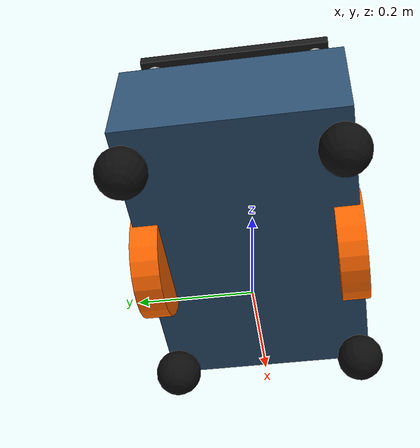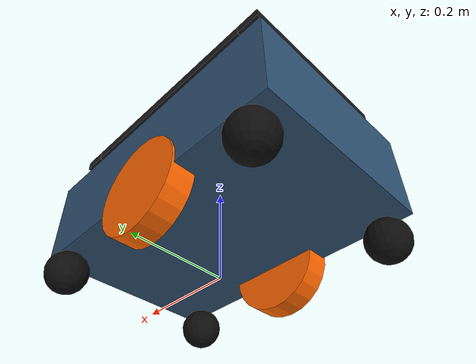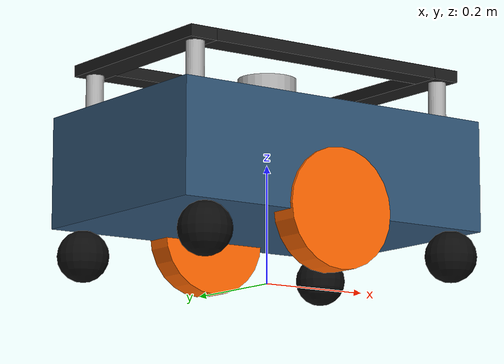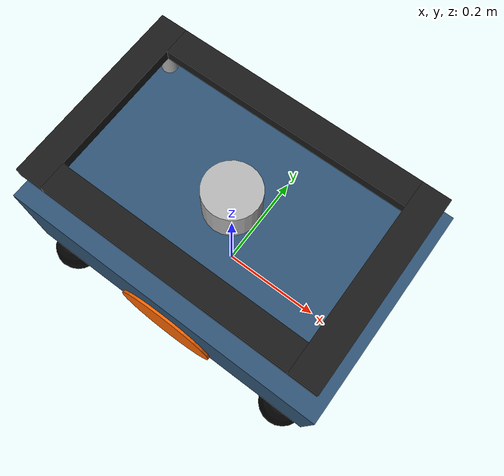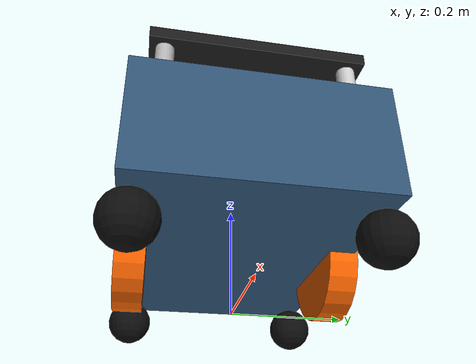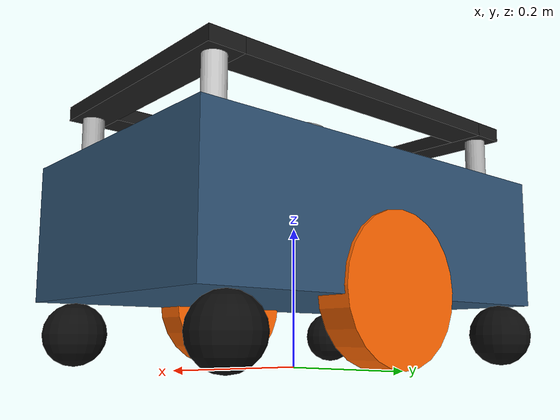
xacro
<?xml version="1.0"?>
<robot name="my_amr" xmlns:xacro="http://www.ros.org/wiki/xacro">

  <xacro:include filename="$(find my_amr_description)/urdf/inertial_macros.xacro"/>
  <xacro:include filename="$(find my_amr_description)/urdf/robot_base.xacro"/>
  <xacro:include filename="$(find my_amr_description)/urdf/drive_wheels.xacro"/>
  <xacro:include filename="$(find my_amr_description)/urdf/lidar.xacro"/>
  <xacro:include filename="$(find my_amr_description)/urdf/lift_tray.xacro"/>
  <xacro:include filename="$(find my_amr_description)/urdf/gazebo_control.xacro"/>

</robot>

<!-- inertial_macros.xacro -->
<robot xmlns:xacro="http://www.ros.org/wiki/xacro">

  <!-- BOX INERTIA - used for chassis -->
  <xacro:macro name="box_inertia" params="m x y z">
    <inertial>
      <mass value="${m}"/>
      <inertia
        ixx="${(1/12) * m * (y*y + z*z)}"
        ixy="0" ixz="0"
        iyy="${(1/12) * m * (x*x + z*z)}"
        iyz="0"
        izz="${(1/12) * m * (x*x + y*y)}"/>
    </inertial>
  </xacro:macro>

  <!-- CYLINDER INERTIA - used for drive wheels -->
  <xacro:macro name="cylinder_inertia" params="m r h">
    <inertial>
      <mass value="${m}"/>
      <inertia
        ixx="${(1/12) * m * (3*r*r + h*h)}"
        ixy="0" ixz="0"
        iyy="${(1/12) * m * (3*r*r + h*h)}"
        iyz="0"
        izz="${(1/2) * m * r*r}"/>
    </inertial>
  </xacro:macro>

  <!-- SPHERE INERTIA - used for castor wheels -->
  <xacro:macro name="sphere_inertia" params="m r">
    <inertial>
      <mass value="${m}"/>
      <inertia
        ixx="${(2/5) * m * r*r}"
        ixy="0" ixz="0"
        iyy="${(2/5) * m * r*r}"
        iyz="0"
        izz="${(2/5) * m * r*r}"/>
    </inertial>
  </xacro:macro>

</robot>

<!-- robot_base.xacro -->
<robot xmlns:xacro="http://www.ros.org/wiki/xacro">

  <!-- scaled down from bcr_bot proportions -->
  <xacro:property name="chassis_length"       value="0.60"/>
  <xacro:property name="chassis_width"        value="0.40"/>
  <xacro:property name="chassis_height"       value="0.19"/>
  <xacro:property name="chassis_mass"         value="25.0"/>
  <xacro:property name="traction_wheel_radius" value="0.10"/>
  <xacro:property name="trolley_wheel_radius"  value="0.044"/>
  <xacro:property name="trolley_track_width"   value="0.36"/>
  <xacro:property name="eps"                   value="0.002"/>
  <xacro:property name="castor_mass"           value="0.1"/>

  <material name="dark_grey">
    <color rgba="0.18 0.32 0.45 1.0"/>
  </material>
  <material name="orange">
    <color rgba="1.0 0.4 0.0 1.0"/>
  </material>
  <material name="silver">
    <color rgba="0.7 0.7 0.7 1.0"/>
  </material>
  <material name="black">
    <color rgba="0.05 0.05 0.05 1.0"/>
  </material>

  <link name="base_footprint"/>
  <link name="base_link"/>

  <!-- z = chassis_height/2 + 2*trolley_wheel_radius + eps = 0.095 + 0.088 + 0.002 = 0.185 -->
  <joint name="base_footprint_joint" type="fixed">
    <parent link="base_footprint"/>
    <child link="base_link"/>
    <origin xyz="0 0 0.185" rpy="0 0 0"/>
  </joint>

  <link name="chassis_link">
    <visual>
      <origin xyz="0 0 0" rpy="0 0 0"/>
      <geometry>
        <box size="${chassis_length} ${chassis_width} ${chassis_height}"/>
      </geometry>
      <material name="dark_grey"/>
    </visual>
    <collision>
      <origin xyz="0 0 0" rpy="0 0 0"/>
      <geometry>
        <box size="${chassis_length} ${chassis_width} ${chassis_height}"/>
      </geometry>
    </collision>
    <xacro:box_inertia m="${chassis_mass}"
                       x="${chassis_length}"
                       y="${chassis_width}"
                       z="${chassis_height}"/>
  </link>

  <joint name="chassis_joint" type="fixed">
    <parent link="base_link"/>
    <child link="chassis_link"/>
    <origin xyz="0 0 0" rpy="0 0 0"/>
  </joint>

  <gazebo reference="chassis_link">
    <material>Gazebo/Blue</material>
  </gazebo>

  <!-- ═══════════════════════════════════
       CASTOR (TROLLEY) WHEEL MACRO
       exact bcr_bot formula:
       z = -(trolley_wheel_radius + chassis_height/2)
  ═══════════════════════════════════ -->
  <xacro:macro name="castor_wheel" params="name x y">
    <link name="${name}_link">
      <visual>
        <geometry><sphere radius="${trolley_wheel_radius}"/></geometry>
        <material name="black"/>
      </visual>
      <collision>
        <geometry><sphere radius="${trolley_wheel_radius}"/></geometry>
      </collision>
      <xacro:sphere_inertia m="${castor_mass}" r="${trolley_wheel_radius}"/>
    </link>

    <joint name="${name}_joint" type="fixed">
      <parent link="chassis_link"/>
      <child link="${name}_link"/>
      <origin xyz="${x} ${y} ${-(trolley_wheel_radius + chassis_height/2)}" rpy="0 0 0"/>
    </joint>

    <gazebo reference="${name}_link">
      <mu1>0.0</mu1>
      <mu2>0.0</mu2>
      <kp>1000000.0</kp>
      <kd>100.0</kd>
      <material>Gazebo/Black</material>
    </gazebo>
  </xacro:macro>

  <!-- front and rear castors -->
  <xacro:castor_wheel name="front_left_castor"  x=" ${chassis_length/2 - 0.05}"  y=" ${trolley_track_width/2}"/>
  <xacro:castor_wheel name="front_right_castor" x=" ${chassis_length/2 - 0.05}"  y="-${trolley_track_width/2}"/>
  <xacro:castor_wheel name="rear_left_castor"   x="-${chassis_length/2 - 0.05}"  y=" ${trolley_track_width/2}"/>
  <xacro:castor_wheel name="rear_right_castor"  x="-${chassis_length/2 - 0.05}"  y="-${trolley_track_width/2}"/>

</robot>

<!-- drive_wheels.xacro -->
<robot xmlns:xacro="http://www.ros.org/wiki/xacro">

  <xacro:property name="traction_wheel_radius"  value="0.10"/>
  <xacro:property name="traction_wheel_width"   value="0.05"/>
  <xacro:property name="traction_track_width"   value="0.36"/>
  <xacro:property name="chassis_height"         value="0.19"/>
  <xacro:property name="trolley_wheel_radius"   value="0.044"/>
  <xacro:property name="eps"                    value="0.002"/>
  <xacro:property name="wheel_mass"             value="30.0"/>

  <xacro:macro name="drive_wheel" params="name y_reflect">
    <link name="${name}_link">
      <visual>
        <geometry>
          <cylinder radius="${traction_wheel_radius}" length="${traction_wheel_width}"/>
        </geometry>
        <origin xyz="0 0 0" rpy="${pi/2} 0 0"/>
        <material name="orange"/>
      </visual>
      <collision>
        <geometry>
          <cylinder radius="${traction_wheel_radius}" length="${traction_wheel_width}"/>
        </geometry>
        <origin xyz="0 0 0" rpy="${pi/2} 0 0"/>
      </collision>
      <xacro:cylinder_inertia m="${wheel_mass}"
                               r="${traction_wheel_radius}"
                               h="${traction_wheel_width}"/>
    </link>

    <!-- exact bcr_bot formula for wheel z -->
    <joint name="${name}_joint" type="continuous">
      <parent link="base_link"/>
      <child link="${name}_link"/>
      <origin xyz="0 ${y_reflect * traction_track_width/2} ${-(chassis_height/2 + 2*trolley_wheel_radius + eps - traction_wheel_radius)}" rpy="0 0 0"/>
      <axis xyz="0 1 0"/>
    </joint>

    <gazebo reference="${name}_link">
      <mu1>200.0</mu1>
      <mu2>200.0</mu2>
      <kp>1000000.0</kp>
      <kd>100.0</kd>
      <min_depth>0.001</min_depth>
      <material>Gazebo/Orange</material>
    </gazebo>
  </xacro:macro>

  <xacro:drive_wheel name="left_wheel"  y_reflect=" 1"/>
  <xacro:drive_wheel name="right_wheel" y_reflect="-1"/>

</robot>

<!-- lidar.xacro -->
<robot xmlns:xacro="http://www.ros.org/wiki/xacro">

  <link name="lidar_link">
    <visual>
      <geometry>
        <cylinder radius="0.05" length="0.07"/>
      </geometry>
      <material name="silver"/>
    </visual>
    <collision>
      <geometry>
        <cylinder radius="0.05" length="0.07"/>
      </geometry>
    </collision>
    <xacro:cylinder_inertia m="0.2" r="0.05" h="0.07"/>
  </link>

  <joint name="lidar_joint" type="fixed">
    <parent link="chassis_link"/>
    <child link="lidar_link"/>
    <origin xyz="0 0 0.13" rpy="0 0 0"/>
  </joint>

  <gazebo reference="lidar_link">
    <material>Gazebo/Grey</material>
    <sensor name="lidar" type="gpu_lidar">
      <always_on>true</always_on>
      <visualize>true</visualize>
      <update_rate>10</update_rate>
      <topic>scan</topic>
      <gz_frame_id>lidar_link</gz_frame_id>
      <lidar>
        <scan>
          <horizontal>
            <samples>360</samples>
            <resolution>1</resolution>
            <min_angle>-3.14159</min_angle>
            <max_angle>3.14159</max_angle>
          </horizontal>
        </scan>
        <range>
          <min>0.12</min>
          <max>16.0</max>
          <resolution>0.01</resolution>
        </range>
        <noise>
          <type>gaussian</type>
          <mean>0.0</mean>
          <stddev>0.01</stddev>
        </noise>
      </lidar>
    </sensor>
  </gazebo>

</robot>

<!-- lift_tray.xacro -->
<robot xmlns:xacro="http://www.ros.org/wiki/xacro">

  <link name="lift_tray_link">
    <!-- Frame structure so LiDAR can see through the middle -->
    <!-- Front Rail -->
    <visual name="front_rail">
      <origin xyz="0.25 0 0" rpy="0 0 0"/>
      <geometry><box size="0.05 0.35 0.02"/></geometry>
      <material name="solid_black"><color rgba="0.1 0.1 0.1 1.0"/></material>
    </visual>
    <collision>
      <origin xyz="0.25 0 0" rpy="0 0 0"/>
      <geometry><box size="0.05 0.35 0.02"/></geometry>
    </collision>

    <!-- Back Rail -->
    <visual name="back_rail">
      <origin xyz="-0.25 0 0" rpy="0 0 0"/>
      <geometry><box size="0.05 0.35 0.02"/></geometry>
      <material name="solid_black"/>
    </visual>
    <collision>
      <origin xyz="-0.25 0 0" rpy="0 0 0"/>
      <geometry><box size="0.05 0.35 0.02"/></geometry>
    </collision>

    <!-- Left Rail -->
    <visual name="left_rail">
      <origin xyz="0 0.15 0" rpy="0 0 0"/>
      <geometry><box size="0.45 0.05 0.02"/></geometry>
      <material name="solid_black"/>
    </visual>
    <collision>
      <origin xyz="0 0.15 0" rpy="0 0 0"/>
      <geometry><box size="0.45 0.05 0.02"/></geometry>
    </collision>

    <!-- Right Rail -->
    <visual name="right_rail">
      <origin xyz="0 -0.15 0" rpy="0 0 0"/>
      <geometry><box size="0.45 0.05 0.02"/></geometry>
      <material name="solid_black"/>
    </visual>
    <collision>
      <origin xyz="0 -0.15 0" rpy="0 0 0"/>
      <geometry><box size="0.45 0.05 0.02"/></geometry>
    </collision>

    <!-- Pistons - Long enough to remain inside chassis even when fully lifted -->
    <visual name="piston_1">
      <origin xyz="0.25 0.15 -0.10" rpy="0 0 0"/>
      <geometry><cylinder radius="0.015" length="0.20"/></geometry>
      <material name="silver">
        <color rgba="0.8 0.8 0.8 1.0"/>
      </material>
    </visual>
    <visual name="piston_2">
      <origin xyz="0.25 -0.15 -0.10" rpy="0 0 0"/>
      <geometry><cylinder radius="0.015" length="0.20"/></geometry>
      <material name="silver"/>
    </visual>
    <visual name="piston_3">
      <origin xyz="-0.25 0.15 -0.10" rpy="0 0 0"/>
      <geometry><cylinder radius="0.015" length="0.20"/></geometry>
      <material name="silver"/>
    </visual>
    <visual name="piston_4">
      <origin xyz="-0.25 -0.15 -0.10" rpy="0 0 0"/>
      <geometry><cylinder radius="0.015" length="0.20"/></geometry>
      <material name="silver"/>
    </visual>

    <inertial>
      <mass value="0.5"/>
      <inertia ixx="0.005" iyy="0.005" izz="0.005" ixy="0" ixz="0" iyz="0"/>
    </inertial>
  </link>

  <!-- Prismatic joint - raised to rest just above LiDAR -->
  <joint name="lift_joint" type="prismatic">
    <parent link="chassis_link"/>
    <child link="lift_tray_link"/>
    <origin xyz="0 0 0.175" rpy="0 0 0"/>
    <axis xyz="0 0 1"/>
    <limit lower="0.0" upper="0.10" effort="10000" velocity="0.05"/>
  </joint>

  <!-- Gazebo specific material configurations mapped to named visuals -->

  <gazebo reference="front_rail"><material>Gazebo/Black</material></gazebo>
  <gazebo reference="back_rail"><material>Gazebo/Black</material></gazebo>
  <gazebo reference="left_rail"><material>Gazebo/Black</material></gazebo>
  <gazebo reference="right_rail"><material>Gazebo/Black</material></gazebo>

  <gazebo reference="piston_1"><material>Gazebo/Silver</material></gazebo>
  <gazebo reference="piston_2"><material>Gazebo/Silver</material></gazebo>
  <gazebo reference="piston_3"><material>Gazebo/Silver</material></gazebo>
  <gazebo reference="piston_4"><material>Gazebo/Silver</material></gazebo>
</robot>
